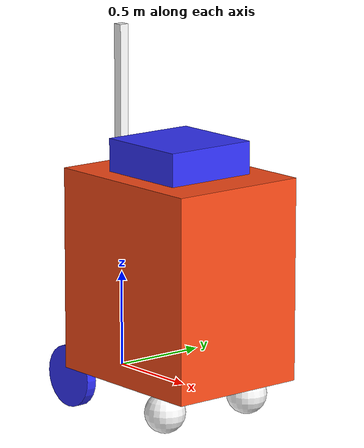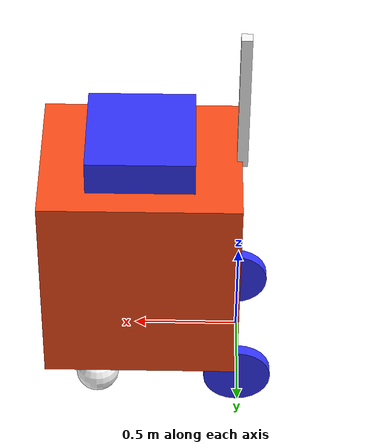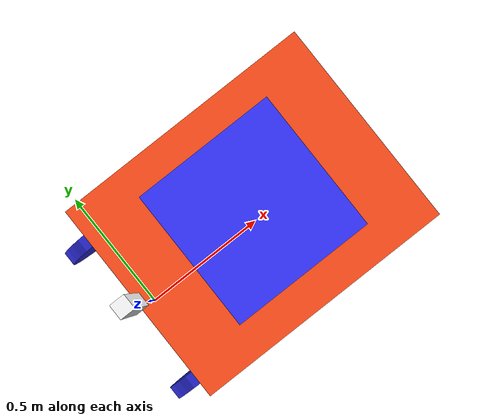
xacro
<?xml version="1.0"?>
<robot xmlns:xacro="http://www.ros.org/wiki/xacro" >

    <xacro:include filename="inertial_macros.xacro"/>

    <xacro:property name="chassis_length" value="0.93"/>
    <xacro:property name="chassis_width" value="0.745"/>
    <xacro:property name="chassis_height" value="1.75"/>
    <xacro:property name="chassis_mass" value="68.039"/>
    <xacro:property name="wheel_radius" value=".161"/>
    <xacro:property name="wheel_thickness" value="0.055"/> <!-- Changed to fix error code 18 from phys engine (was 0.055) -->
    <xacro:property name="wheel_mass" value=".725"/>
    <xacro:property name="wheel_offset_x" value="0.0"/>
    <xacro:property name="wheel_offset_y" value="0.33"/>
    <xacro:property name="wheel_offset_z" value="0.0"/>
    <xacro:property name="caster_radius" value="0.105"/>
    <xacro:property name="caster_mass" value="1.1"/>
    <xacro:property name="caster_thickness" value=".058"/>
    <xacro:property name="caster_offset_x" value="0.68"/>
    <xacro:property name="caster_offset_z" value="${wheel_offset_z - wheel_radius + caster_radius}"/>
    <xacro:property name="caster_offset_y" value="0.27"/>

    <material name="white">
        <color rgba="1 1 1 1" />
    </material>

    <material name="orange">
        <color rgba="1 0.3 0.1 1"/>
    </material>

    <material name="blue">
        <color rgba="0.2 0.2 1 1"/>
    </material>

    <material name="black">
        <color rgba="0 0 0 1"/>
    </material>

    <material name="red">
        <color rgba="1 0 0 1"/>
    </material>

    <!-- BASE LINK -->

    <link name="base_link">
    </link>

    <!-- BASE_FOOTPRINT LINK -->

    <joint name="base_footprint_joint" type="fixed">
        <parent link="base_link"/>
        <child link="base_footprint"/>
        <origin xyz="0 0 0" rpy="0 0 0"/>
    </joint>

    <link name="base_footprint">
    </link>

    <!-- CHASSIS BASE LINK -->

    <joint name="chassis_base_joint" type="fixed">
        <parent link="base_link"/>
        <child link="chassis_base"/>
        <origin xyz="${-wheel_offset_x} 0 ${-wheel_offset_z}"/>
    </joint>

    <link name="chassis_base">
        <visual>
            <origin xyz="${chassis_length/2} 0 ${chassis_height/2 - 0.3}"/>
            <geometry>
                <box size="${chassis_length} ${chassis_width} ${chassis_height-0.7}"/>
            </geometry>
            <material name="orange"/>
        </visual>
        <collision>
            <origin xyz="${chassis_length/2} 0 0.535"/>
            <geometry>
                <box size="${chassis_length} ${chassis_width} ${chassis_height-0.7}"/>
            </geometry>
        </collision>
        <xacro:inertial_box mass="${chassis_mass}" x="${chassis_length}" y="${chassis_width}" z="${chassis_height}">
            <origin xyz="${chassis_length/2} 0 0.535" rpy="0 0 0"/>
        </xacro:inertial_box>
    </link>

    <gazebo reference="chassis_base">
        <material>Gazebo/Orange</material>
    </gazebo>

    <!-- LIDAR MAST LINK -->

    <joint name="mast_joint" type="fixed">
        <parent link="chassis_base" />
        <child link="mast" />
        <origin xyz="0 0 1.07" rpy="0 0 0" />
    </joint>

    <link name="mast">
        <visual>
            <origin xyz="0 0 0.365" rpy="0 0 0" /> <geometry>
                <box size="0.05 0.05 0.73" /> </geometry>
            <material name="white" />
        </visual>
        <collision>
            <origin xyz="0 0 0.365" rpy="0 0 0" />
            <geometry>
                <box size="0.05 0.05 0.73" />
            </geometry>
        </collision>
        <xacro:inertial_box mass="5.0" x=".05" y=".05" z="0.365">
            <origin xyz="${chassis_length/2} 0 0.535" rpy="0 0 0"/>
        </xacro:inertial_box>
    </link>

    <gazebo reference="mast">
        <material>Gazebo/White</material>
    </gazebo>

    <!-- SEAT LINK -->

    <joint name="seat_joint" type="fixed">
        <parent link="chassis_base" />
        <child link="seat" />
        <origin xyz="0.465 0 1.07" rpy="0 0 0" /> </joint>

    <link name="seat">
        <visual>
            <origin xyz="0 0 -0.05" rpy="0 0 0" /> <geometry>
                <box size="0.5 0.5 0.5" /> </geometry>
            <material name="blue" />
        </visual>
        <collision>
            <origin xyz="0 0 0.25" rpy="0 0 0" />
            <geometry>
                <box size="0.5 0.5 0.5" />
            </geometry>
        </collision>
        <xacro:inertial_box mass="10.0" x="0" y="0" z="0.25">
            <origin xyz="0 0 0.25" rpy="0 0 0"/>
        </xacro:inertial_box>

    </link>

    <gazebo reference="seat">
        <material>Gazebo/Blue</material>
    </gazebo>

    <!-- LEFT WHEEL LINK -->

    <joint name="left_wheel_joint" type="continuous">
        <parent link="base_link"/>
        <child link="left_wheel"/>
        <origin xyz="0 ${wheel_offset_y} 0" rpy="-${pi/2} 0 0" />
        <axis xyz="0 0 1"/>
        <limit effort="65.3" velocity="19.89"/> <!-- peak torque from DS, max velo (rad/s) based off 190 rpm for gear ratio-->
        <dynamics damping = "0.5" friction = "0.5"/> <!-- friction and damping for realistic simulation-->
    </joint>

    <link name="left_wheel">
        <visual>
            <geometry>
                <cylinder radius="${wheel_radius}" length="${wheel_thickness}"/>
            </geometry>
            <material name="blue"/>
        </visual>
        <collision>
            <geometry>
                <sphere radius="${wheel_radius}"/>
            </geometry>
        </collision>
        <xacro:inertial_cylinder mass="${wheel_mass}" length="${wheel_thickness}" radius="${wheel_radius}">
            <origin xyz="0 0 0" rpy="0 0 0"/>
        </xacro:inertial_cylinder>
    </link>

    <gazebo reference="left_wheel">
        <material>Gazebo/Blue</material>
    </gazebo>

    <!-- RIGHT WHEEL LINK -->

    <joint name="right_wheel_joint" type="continuous">
        <parent link="base_link"/>
        <child link="right_wheel"/>
        <origin xyz="0 ${-wheel_offset_y} 0" rpy="${pi/2} 0 0" />
        <axis xyz="0 0 -1"/>
        <limit effort="65.3" velocity="19.89"/> <!-- peak torque from DS, max velo (rad/s) based off 190 rpm for gear ratio-->
        <dynamics damping = "0.5" friction = "0.5"/> <!-- friction and damping for realistic simulation-->
    </joint>

    <link name="right_wheel">
        <visual>
            <geometry>
                <cylinder radius="${wheel_radius}" length="${wheel_thickness}"/>
            </geometry>
            <material name="blue"/>
        </visual>
        <collision>
            <geometry>
                <sphere radius="${wheel_radius}"/>
            </geometry>
        </collision>
        <xacro:inertial_cylinder mass="${wheel_mass}" length="${wheel_thickness}" radius="${wheel_radius}">
            <origin xyz="0 0 0" rpy="0 0 0"/>
        </xacro:inertial_cylinder>
    </link>

    <gazebo reference="right_wheel">
        <material>Gazebo/Blue</material>
    </gazebo>

    <!-- TWO CASTER WHEELS -->

    <!-- LEFT CASTER LINK -->

    <joint name="left_caster_joint" type="fixed">
        <parent link="base_link"/>
        <child link="left_caster"/>
        <origin xyz="${caster_offset_x} ${caster_offset_y} ${caster_offset_z}"/>
    </joint>

    <link name="left_caster">
        <visual>
            <geometry>
                <sphere radius="${caster_radius}"/>
            </geometry>
            <material name="white"/>
        </visual>
        <collision>
            <geometry>
                <sphere radius="${caster_radius}"/>
            </geometry>
        </collision>
        <xacro:inertial_sphere mass="${caster_mass}" radius="${caster_radius}">
            <origin xyz="0 0 0" rpy="0 0 0"/>
        </xacro:inertial_sphere>
    </link>

    <gazebo reference="left_caster">
        <material>Gazebo/White</material>
        <mu1 value="0.001"/>
        <mu2 value="0.001"/>
    </gazebo>

    <!-- RIGHT CASTER LINK -->

    <joint name="right_caster_joint" type="fixed">
        <parent link="base_link"/>
        <child link="right_caster"/>
        <origin xyz="${caster_offset_x} ${-caster_offset_y} ${caster_offset_z}"/>
    </joint>

    <link name="right_caster">
        <visual>
            <geometry>
                <sphere radius="${caster_radius}"/>
            </geometry>
            <material name="white"/>
        </visual>
        <collision>
            <geometry>
                <sphere radius="${caster_radius}"/>
            </geometry>
        </collision>
        <xacro:inertial_sphere mass="${caster_mass}" radius="${caster_radius}">
            <origin xyz="0 0 0" rpy="0 0 0"/>
        </xacro:inertial_sphere>
    </link>

    <gazebo reference="right_caster">
        <material>Gazebo/White</material>
        <mu1 value="0.001"/>
        <mu2 value="0.001"/>
    </gazebo>

</robot>

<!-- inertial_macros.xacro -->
<robot xmlns:xacro="http://www.ros.org/wiki/xacro" >

    <!-- Specify some standard inertial calculations https://en.wikipedia.org/wiki/List_of_moments_of_inertia -->
    <!-- These make use of xacro's mathematical functionality -->

    <xacro:macro name="inertial_sphere" params="mass radius *origin">
        <inertial>
            <xacro:insert_block name="origin"/>
            <mass value="${mass}" />
            <inertia ixx="${(2/5) * mass * (radius*radius)}" ixy="0.0" ixz="0.0"
                    iyy="${(2/5) * mass * (radius*radius)}" iyz="0.0"
                    izz="${(2/5) * mass * (radius*radius)}" />
        </inertial>
    </xacro:macro>

    <xacro:macro name="inertial_box" params="mass x y z *origin">
        <inertial>
            <xacro:insert_block name="origin"/>
            <mass value="${mass}" />
            <inertia ixx="${(1/12) * mass * (y*y+z*z)}" ixy="0.0" ixz="0.0"
                    iyy="${(1/12) * mass * (x*x+z*z)}" iyz="0.0"
                    izz="${(1/12) * mass * (x*x+y*y)}" />
        </inertial>
    </xacro:macro>

    <!-- CYLINDER INERTIA: Modeled for motorized wheels with calculated reflected inertia. Called in robot_core.xacro -->
    <xacro:macro name="inertial_cylinder" params="mass length radius *origin">
        <inertial>
            <xacro:insert_block name="origin"/>
            <mass value="${mass}" />
            <inertia ixx="${(1/12) * mass * (3*radius*radius + length*length)}" ixy="0.0" ixz="0.0"
                    iyy="${(1/12) * mass * (3*radius*radius + length*length)}" iyz="0.0"
                    izz="${(mass/2.0) * (radius*radius)}" />  <!--articubot for old-->
        </inertial>
    </xacro:macro>

</robot>
